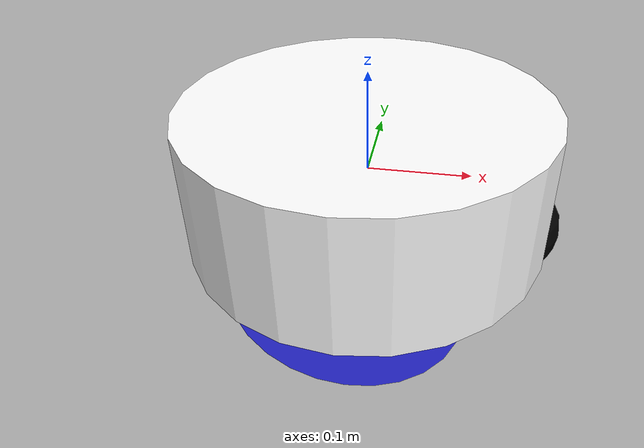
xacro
<?xml version="1.0"?>
<robot xmlns:xacro="http://www.ros.org/wiki/xacro" >

    <xacro:include filename="inertial_macros.xacro"/>

    <material name="white">
        <color rgba="1 1 1 1" />
    </material>

    <material name="orange">
        <color rgba="1 0.3 0.1 1" />
    </material>

    <material name="blue">
        <color rgba="0.2 0.2 1 1" />
    </material>

    <material name="black">
        <color rgba="0 0 0 1" />
    </material>

     <material name="red">
        <color rgba="1 0 0 1" />
    </material>

    <!-- base_footprint link -->
    <link name="base_footprint"/>

    <joint name="base_footprint_joint" type="fixed">
        <parent link="base_footprint"/>
        <child link="base_link"/>
        <origin xyz="0 0 0" rpy="0 0 0"/>
    </joint>

    <!-- base link -->
    <link name="base_link">
    </link>

    <!-- chassis link -->
    <joint name="chassis_joint" type="fixed">
        <parent link="base_link"/>
        <child link="chassis"/>
        <origin xyz="0 0 0" rpy="0 0 0"/>
    </joint>

    <link name="chassis">
        <visual>
            <origin xyz="0 0 0" rpy="0 0 0"/>
            <geometry>
                <cylinder radius="0.1778" length="0.136"/>
            </geometry>
            <material name="white"/>
        </visual>
        <collision>
            <origin xyz="0 0 0" rpy="0 0 0"/>
            <geometry>
                <cylinder radius="0.1778" length="0.136"/>
            </geometry>
        </collision>
        <xacro:inertial_cylinder mass="1.0" length="0.136" radius="0.1778">
            <origin xyz="0 0 0" rpy="0 0 0"/>
        </xacro:inertial_cylinder>
    </link>

    <gazebo reference="chassis">
        <material>Gazebo/White</material>
    </gazebo>

    <!-- left wheel link -->
    <joint name="left_wheel_joint" type="continuous">
        <parent link="base_link"/>
        <child link="left_wheel"/>
        <origin xyz="0 0.127 -0.0508" rpy="0 0 0"/>
        <axis xyz="0 1 0"/>
    </joint>

    <link name="left_wheel">
        <visual>
            <origin rpy="-${pi/2} 0 0"/>
            <geometry>
                <cylinder radius="0.1016" length="0.0211"/>
            </geometry>
            <material name="blue"/>
        </visual>
        <collision>
            <origin rpy="-${pi/2} 0 0"/>
            <geometry>
                <cylinder radius="0.1016" length="0.0211"/>
            </geometry>
        </collision>
        <xacro:inertial_cylinder mass="0.5" length="0.0211" radius="0.1016">
            <origin xyz="0 0 0" rpy="0 0 0"/>
        </xacro:inertial_cylinder>
    </link>

    <gazebo reference="left_wheel">
        <material>Gazebo/Blue</material>
    </gazebo>

    <!-- right wheel link -->
    <joint name="right_wheel_joint" type="continuous">
        <parent link="base_link"/>
        <child link="right_wheel"/>
        <origin xyz="0 -0.127 -0.0508" rpy="0 0 0"/>
        <axis xyz="0 1 0"/>
    </joint>

    <link name="right_wheel">
        <visual>
            <origin rpy="${pi/2} 0 0"/>
            <geometry>
                <cylinder radius="0.1016" length="0.0211"/>
            </geometry>
            <material name="blue"/>
        </visual>
        <collision>
            <origin rpy="${pi/2} 0 0"/>
            <geometry>
                <cylinder radius="0.1016" length="0.0211"/>
            </geometry>
        </collision>
        <xacro:inertial_cylinder mass="0.5" length="0.0211" radius="0.1016">
            <origin xyz="0 0 0" rpy="0 0 0"/>
        </xacro:inertial_cylinder>
    </link>

    <gazebo reference="right_wheel">
        <material>Gazebo/Blue</material>
    </gazebo>

    <!-- caster wheel link -->
    <joint name="caster_wheel_joint" type="fixed">
        <parent link="chassis"/>
        <child link="caster_wheel"/>
        <origin xyz="0.1397 0 -0.0508"/>
    </joint>

    <link name="caster_wheel">
        <visual>
            <geometry>
                <sphere radius="0.05"/>
            </geometry>
            <material name="black"/>
        </visual>
        <collision>
            <geometry>
                <sphere radius="0.05"/>
            </geometry>
        </collision>
        <xacro:inertial_sphere mass="0.2" radius="0.05">
            <origin xyz="0 0 0" rpy="0 0 0"/>
        </xacro:inertial_sphere>
    </link>

    <gazebo reference="caster_wheel">
        <material>Gazebo/Black</material>
    </gazebo>

</robot>
